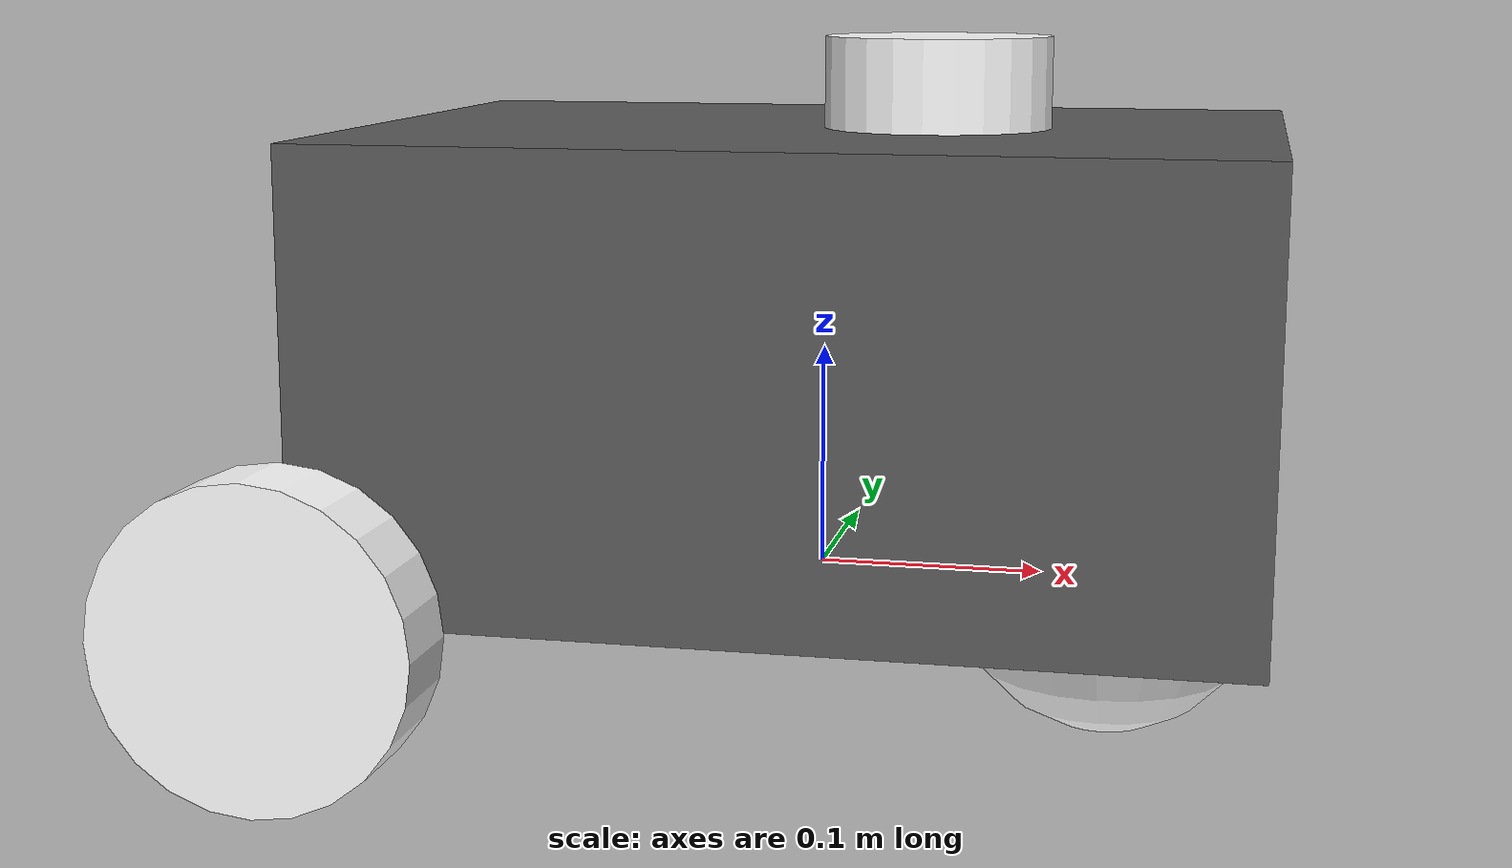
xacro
<?xml version="1.0"?>
<robot xmlns:xacro="http://www.ros.org/wiki/xacro"  name="robot">

    <xacro:arg name="use_ros2_control" default="true"/>
    <xacro:arg name="sim_mode" default="false"/>

    <xacro:include filename="robot_core_2.xacro" />

    <xacro:if value="$(arg use_ros2_control)">
        <xacro:include filename="ros2_control.xacro" />
    </xacro:if>
    <xacro:include filename="lidar.xacro" />

</robot>

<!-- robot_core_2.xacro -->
<robot xmlns:xacro="http://www.ros.org/wiki/xacro" >

    <xacro:include filename="inertial_macros.xacro"/>

    <material name="white">
        <color rgba="1 1 1 1" />
    </material>

    <material name="orange">
        <color rgba="1 0.3 0.1 1" />
    </material>

    <material name="blue">
        <color rgba="0.2 0.2 1 1" />
    </material>

    <material name="black">
        <color rgba="${90/255} ${90/255} ${90/255} 1.0" />
    </material>

    <!-- BASE LINK -->

    <link name="base_link">
        <xacro:inertial_cylinder mass="0" length="0" radius="0">
            <origin xyz="0 0 0" rpy="0 0 0"/>
        </xacro:inertial_cylinder>
    </link>

    <!-- BASE_FOOTPRINT LINK -->

    <joint name="base_footprint_joint" type="fixed">
        <parent link="base_link"/>
        <child link="base_footprint"/>
        <origin xyz="0 0 0" rpy="0 0 0"/>
    </joint>

    <link name="base_footprint">
    </link>

    <!-- CHASSIS LINK -->

    <joint name = "chassis_joint" type="fixed">
        <parent link="base_link"/>
        <child link="chassis"/>
        <origin xyz="-0.2 0 0"/>
    </joint>

    <link name="chassis">
        <visual>
            <origin xyz="0.2 0 0.1"/>
            <geometry>
                <box size="0.4 0.3 0.2"/>
            </geometry>
            <material name="black"/>
        </visual>
        <collision>
            <origin xyz="0.2 0 0.1"/>
            <geometry>
                <box size="0.4 0.3 0.2"/>
            </geometry>
        </collision>
        <xacro:inertial_box mass="0.5" x="0.4" y="0.3" z="0.1">
            <origin xyz="0.2 0 0.1" rpy="0 0 0"/>
        </xacro:inertial_box>
    </link>

    <gazebo reference="chassis">
        <material>Gazebo/Grey</material>
    </gazebo>

    <joint name="left_wheel_joint" type="continuous">
        <parent link="base_link"/>
        <child link="left_wheel"/>
        <origin xyz=" -0.2 0.175 0" rpy="-${pi/2} 0 0"/>
        <axis xyz="0 0 1"/>
    </joint>

    <link name="left_wheel">
        <visual>
            <geometry>
                <cylinder radius="0.07" length="0.04"/>
            </geometry>
            <material name="white"/>
        </visual>
        <collision>
            <geometry>
                <cylinder radius="0.07" length="0.04"/>
            </geometry>
        </collision>
        <xacro:inertial_cylinder mass="0.05" length="0.04" radius="0.07">
            <origin xyz="0 0 0" rpy="0 0 0"/>
        </xacro:inertial_cylinder>
    </link>

    <gazebo reference="left_wheel">
        <material>Gazebo/White</material>
    </gazebo>

    <joint name="right_wheel_joint" type="continuous">
        <parent link="base_link"/>
        <child link="right_wheel"/>
        <origin xyz="-0.2 -0.175 0" rpy="${pi/2} 0 0"/>
        <axis xyz="0 0 -1"/>
    </joint>

    <link name="right_wheel">
        <visual>
            <geometry>
                <cylinder radius="0.07" length="0.04"/>
            </geometry>
            <material name="white"/>
        </visual>
        <collision>
            <geometry>
                <cylinder radius="0.07" length="0.04"/>
            </geometry>
        </collision>
        <xacro:inertial_cylinder mass="0.05" length="0.04" radius="0.07">
            <origin xyz="0 0 0" rpy="0 0 0"/>
        </xacro:inertial_cylinder>
    </link>

    <gazebo reference="right_wheel">
        <material>Gazebo/White</material>
    </gazebo>

    <joint name="caster_wheel_joint" type="fixed">
        <parent link="chassis"/>
        <child link="caster_wheel"/>
        <origin xyz="0.33 0 0"/>
    </joint>

    <link name="caster_wheel">
        <visual>
            <geometry>
                <sphere radius="0.07"/>
            </geometry>
            <material name="white"/>
        </visual>
        <collision>
            <geometry>
                <sphere radius="0.07"/>
            </geometry>
        </collision>
        <xacro:inertial_sphere mass="0.01" radius="0.07">
            <origin xyz="0 0 0" rpy="0 0 0"/>
        </xacro:inertial_sphere>
    </link>

    <gazebo reference="caster_wheel">
        <material>Gazebo/White</material>
        <mu1 value="0.001"/>
        <mu2 value="0.001"/>
    </gazebo>

</robot>

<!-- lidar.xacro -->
<robot xmlns:xacro="http://www.ros.org/wiki/xacro" >

    <!-- LASER LINK -->
    <joint name="laser_joint" type="fixed">
        <parent link="chassis"/>
        <child link="laser_frame"/>
        <origin xyz="0.25 0 0.22" rpy="0 0 0"/>

    </joint>

    <link name="laser_frame">
        <visual>
            <geometry>
                <cylinder radius="0.05" length="0.04"/>
            </geometry>
            <material name = "white"/>
        </visual>
    </link>
    <!-- IMU LINK -->
    <gazebo reference="laser_frame">
        <material>Gazebo/Black</material>

        <sensor name="laser" type="ray">
            <pose> 0 0 0 0 0 0 </pose>
            <visualize>false</visualize>
            <update_rate>10</update_rate>
            <ray>
                <scan>
                    <horizontal>
                        <samples>360</samples>
                        <min_angle>-3.14</min_angle>
                        <max_angle>3.14</max_angle>
                    </horizontal>
                </scan>
                <range>
                    <min>0.3</min>
                    <max>12</max>
                </range>
            </ray>
            <plugin name="laser_controller" filename="libgazebo_ros_ray_sensor.so">
                <ros>
                    <argument>~/out:=scan</argument>
                </ros>
                <output_type>sensor_msgs/LaserScan</output_type>
                <frame_name>laser_frame</frame_name>
            </plugin>
        </sensor>
    </gazebo>

</robot>
